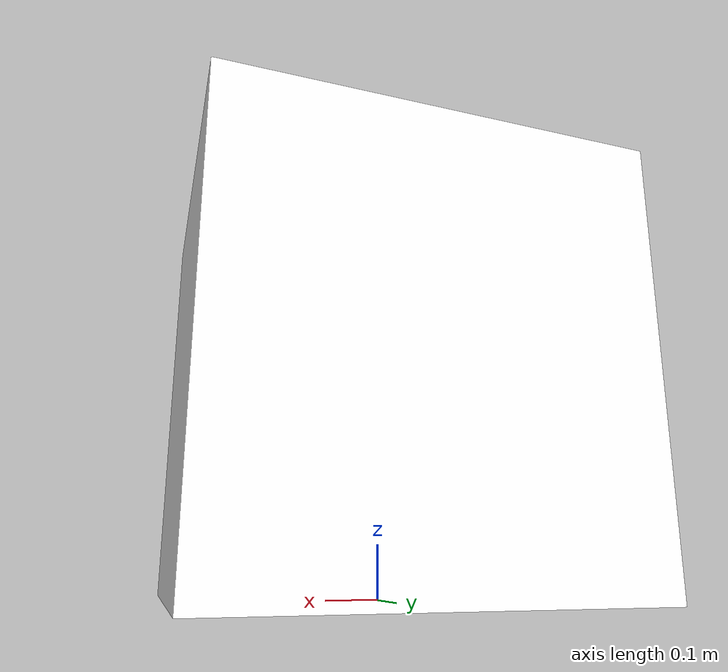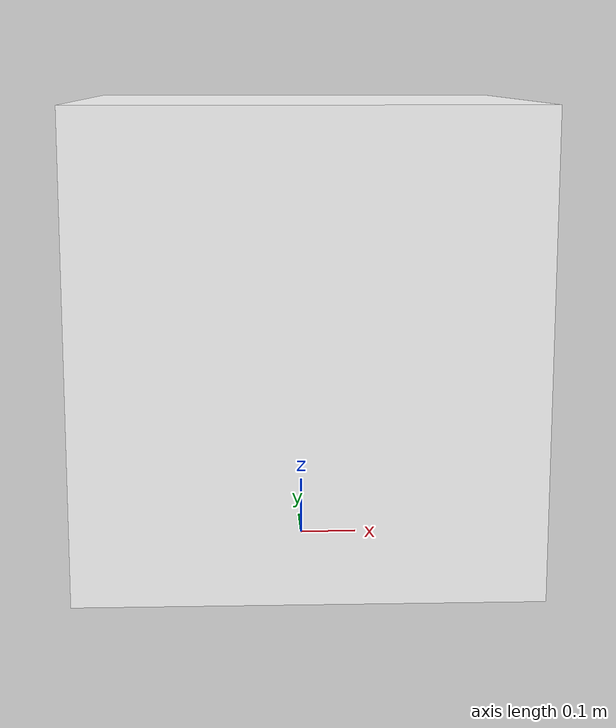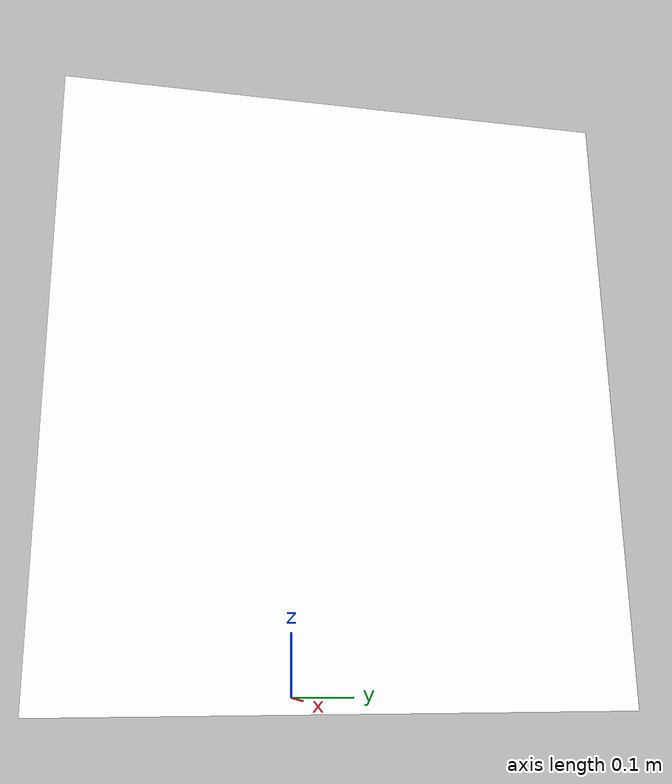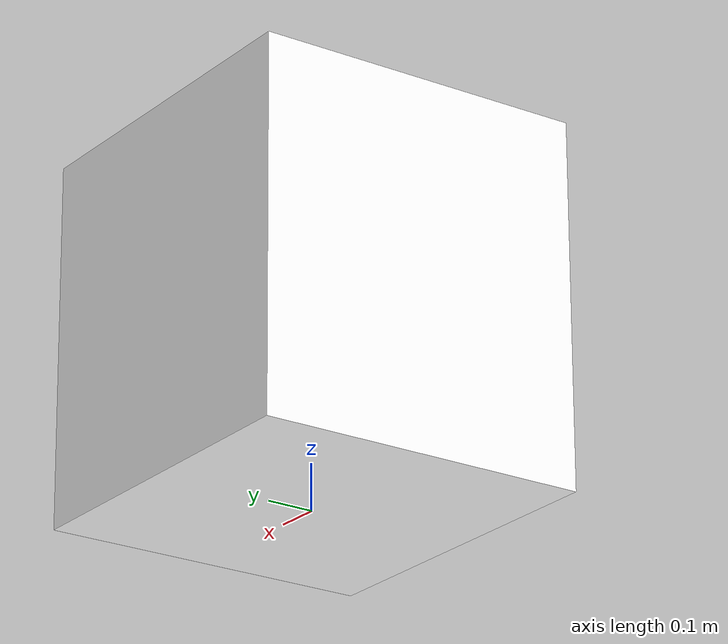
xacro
<?xml version = "1.0"?>
<robot name="workstation">
  <material name="white_workstation">
    <color rgba="1 1 1 1"/>
  </material>
  <link name="workstation_link">
    <visual>
      <geometry>
	      <box size="0.76 0.72 0.79"/>
	    </geometry>
      <material name="white_workstation"/>
    </visual>
    <collision>
      <geometry>
	      <box size="0.76 0.72 0.79"/>
	    </geometry>
    </collision>
    <inertial>
    	<mass value="50"/>
      <inertia ixx="0.1" ixy="0" ixz="0" iyy="0.1" iyz="0" izz="0.1"/>
    </inertial>
  </link>
  <gazebo reference="workstation_link">
      <dampingFactor>0.005</dampingFactor>
      <kp>1000000</kp>
      <kd>1.0</kd>
      <mu1>1.0</mu1>
      <mu2>1.0</mu2>
  </gazebo>

  <link name = "world"/>
  <joint name="workstation_joint" type="fixed">
    <parent link="world" />
    <child link = "workstation_link" />
    <origin xyz="0. 0. 0.395" rpy="0.0 0.0 0.0" />
  </joint>
</robot>
